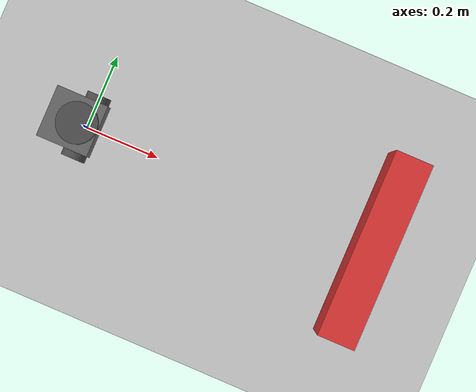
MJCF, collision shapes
<?xml version='1.0' encoding='utf-8'?>
<mujoco model="turtlebot3_burger_minimal_world">
  <compiler angle="radian" />
  <option timestep="0.001" gravity="0 0 -9.81" integrator="implicit" />
  <visual>
    <global offwidth="320" offheight="240" />
    <map znear="0.05" zfar="10" />
  </visual>
  <asset>
    <texture name="minimal_grid" type="2d" builtin="checker" width="256" height="256" rgb1="0.92 0.92 0.92" rgb2="0.62 0.62 0.62" />
    <material name="minimal_grid" texture="minimal_grid" texrepeat="4 4" texuniform="true" reflectance="0.1" />
    <mesh name="burger_base" content_type="model/stl" file="../source/turtlebot3_description/meshes/bases/burger_base.stl" scale="0.001 0.001 0.001" />
    <mesh name="left_tire" content_type="model/stl" file="../source/turtlebot3_description/meshes/wheels/left_tire.stl" scale="0.001 0.001 0.001" />
    <mesh name="right_tire" content_type="model/stl" file="../source/turtlebot3_description/meshes/wheels/right_tire.stl" scale="0.001 0.001 0.001" />
    <mesh name="lds" content_type="model/stl" file="../source/turtlebot3_description/meshes/sensors/lds.stl" scale="0.001 0.001 0.001" />
  </asset>
  <worldbody>
    <geom name="ground" type="plane" size="3 3 0.05" material="minimal_grid" friction="1.0" />
    <geom name="front_marker" type="box" pos="0.8 0 0.18" size="0.05 0.25 0.18" rgba="0.85 0.2 0.2 1" />
    <light name="top_light" pos="0 0 3" dir="0 0 -1" diffuse="0.8 0.8 0.8" />
    <camera name="overview" pos="1.2 -1.6 1.1" xyaxes="0.8 0.6 0 -0.35 0.47 0.81" />
    <body name="base_footprint" pos="0 0 0.02">
      <freejoint />
      <body name="base_link" pos="0 0 0.01">
        <inertial pos="0 0 0" quat="0.994532 -0.0072214 -0.0815456 -0.0648458" mass="0.825735" diaginertia="0.00221987 0.00211778 0.00200059" />
        <geom pos="-0.032 0 0" type="mesh" contype="0" conaffinity="0" group="1" density="0" rgba="0.4 0.4 0.4 1" mesh="burger_base" />
        <geom size="0.07 0.07 0.0715" pos="-0.032 0 0.07" type="box" rgba="0.4 0.4 0.4 1" />
        <body name="wheel_left_link" pos="0 0.08 0.023" quat="0.707388 -0.706825 0 0">
          <inertial pos="0 0 0" quat="-0.000890159 0.706886 0.000889646 0.707326" mass="0.0284989" diaginertia="2.07126e-05 1.11924e-05 1.11756e-05" />
          <joint name="wheel_left_joint" pos="0 0 0" axis="0 0 1" />
          <geom quat="0.707388 0.706825 0 0" type="mesh" contype="0" conaffinity="0" group="1" density="0" rgba="0.3 0.3 0.3 1" mesh="left_tire" />
          <geom size="0.033 0.009" type="cylinder" rgba="0.3 0.3 0.3 1" />
        </body>
        <body name="wheel_right_link" pos="0 -0.08 0.023" quat="0.707388 -0.706825 0 0">
          <inertial pos="0 0 0" quat="-0.000890159 0.706886 0.000889646 0.707326" mass="0.0284989" diaginertia="2.07126e-05 1.11924e-05 1.11756e-05" />
          <joint name="wheel_right_joint" pos="0 0 0" axis="0 0 1" />
          <geom quat="0.707388 0.706825 0 0" type="mesh" contype="0" conaffinity="0" group="1" density="0" rgba="0.3 0.3 0.3 1" mesh="right_tire" />
          <geom size="0.033 0.009" type="cylinder" rgba="0.3 0.3 0.3 1" />
        </body>
        <body name="caster_back_link" pos="-0.081 0 -0.004" quat="0.707388 -0.706825 0 0">
          <inertial pos="0 0 0" mass="0.005" diaginertia="0.001 0.001 0.001" />
          <geom size="0.015 0.0045 0.01" pos="0 0.001 0" type="box" />
        </body>
        <body name="imu_link" pos="-0.032 0 0.068" />
        <body name="base_scan" pos="-0.032 0 0.172">
          <inertial pos="0 0 0" mass="0.114" diaginertia="0.001 0.001 0.001" />
          <geom type="mesh" contype="0" conaffinity="0" group="1" density="0" rgba="0.3 0.3 0.3 1" mesh="lds" />
          <geom size="0.055 0.01575" pos="0.015 0 -0.0065" type="cylinder" rgba="0.3 0.3 0.3 1" />
        </body>
      </body>
    </body>
  </worldbody>
  <actuator>
    <velocity name="left_motor" joint="wheel_left_joint" ctrllimited="true" ctrlrange="-12 12" kv="0.75" />
    <velocity name="right_motor" joint="wheel_right_joint" ctrllimited="true" ctrlrange="-12 12" kv="0.75" />
  </actuator>
</mujoco>
